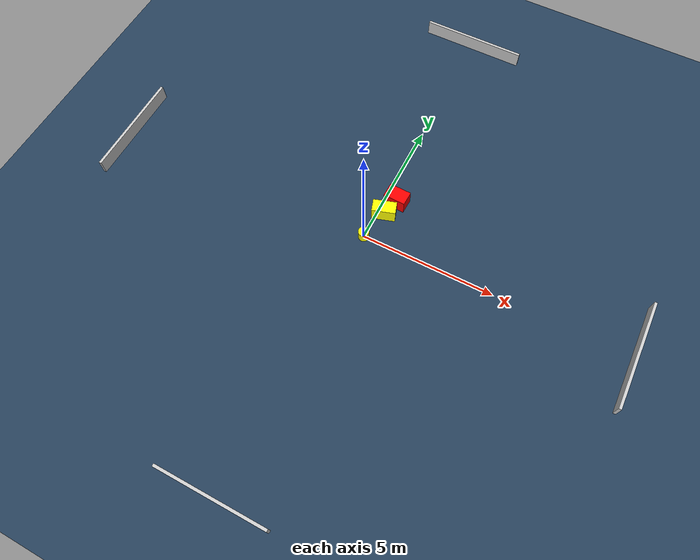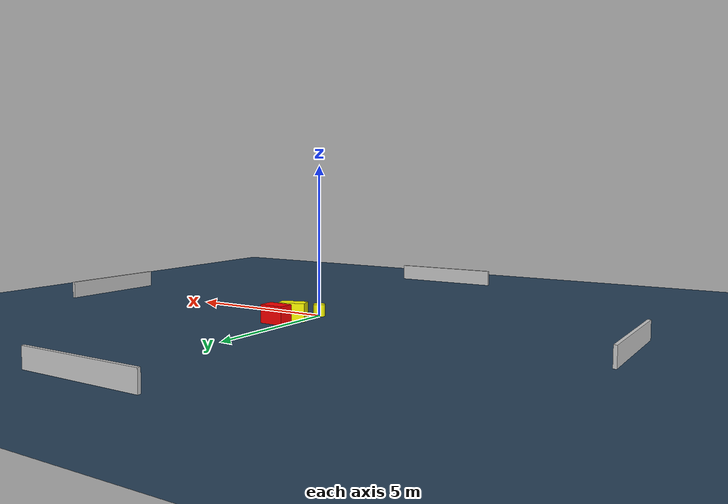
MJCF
<?xml version="1.0" ?>
<mujoco model="generated_environment">
  <option timestep="0.01" integrator="RK4" cone="elliptic"/>
  <default>
    <geom density="1"/>
  </default>
  <asset>
    <texture builtin="gradient" height="3072" name="skybox" rgb1="0.3 0.5 0.7" rgb2="0 0 0" type="skybox" width="512"/>
    <texture builtin="checker" height="300" name="groundplane" rgb1="0.2 0.3 0.4" rgb2="0.1 0.2 0.3" type="2d" width="300"/>
    <material name="groundplane" reflectance="0.2" texrepeat="5 5" texture="groundplane"/>
  </asset>
  <worldbody>
    <light dir="0 0 -1" directional="true" pos="0 0 1.5"/>
    <geom condim="3" friction="0.5 0.005 0.001" material="groundplane" name="floor" pos="0 0 0" size="0 0 0.05" type="plane"/>
    <body name="walls">
      <geom name="wall_1" condim="4" pos="-10.0 0.0 0.3" rgba="0.800000011920929 0.800000011920929 0.800000011920929 1.0" size="0.05 2.0 0.3" type="box"/>
      <geom name="wall_2" condim="4" pos="10.0 0.0 0.3" rgba="0.800000011920929 0.800000011920929 0.800000011920929 1.0" size="0.05 2.0 0.3" type="box"/>
      <geom name="wall_3" condim="4" pos="0.0 -10.0 0.3" rgba="0.800000011920929 0.800000011920929 0.800000011920929 1.0" size="2.0 0.05 0.3" type="box"/>
      <geom name="wall_4" condim="4" pos="0.0 10.0 0.3" rgba="0.800000011920929 0.800000011920929 0.800000011920929 1.0" size="2.0 0.05 0.3" type="box"/>
    </body>
    <body name="robot">
      <joint name="joint_x" type="slide" pos="0 0 0" axis="1 0 0"/>
      <joint name="joint_y" type="slide" pos="0 0 0" axis="0 1 0"/>
      <geom name="robot" type="cylinder" pos="0.0 0.0 0.2" size="0.2 0.2 0.0" mass="5.0" friction="1.0 0.005 0.0001" condim="4" rgba="1.0 1.0 0.0 1.0"/>
    </body>
    <body name="obstacle_1_movable">
      <geom name="obstacle_1_movable" condim="4" pos="0.24218584805418064 1.1543296967715422 0.3" euler="0 0 287.91835583294545" friction="0.0 0.005 0.001" rgba="1.0 1.0 0.0 1.0" size="0.23497786937661877 0.4366734073684624 0.3" type="box" mass="0.1"/>
      <joint type="free"/>
    </body>
    <body name="obstacle_2_static">
      <geom name="obstacle_2_static" condim="4" pos="0.43597218137523286 1.8290339185479612 0.3" euler="0 0 88.04378425652138" friction="0.0 0.005 0.001" rgba="1.0 0.0 0.0 1.0" size="0.26702728925113484 0.40991569507814063 0.3" type="box"/>
    </body>
  </worldbody>
  <actuator>
    <motor name="actuator_x" joint="joint_x" gear="1" ctrlrange="-1 1"/>
    <motor name="actuator_y" joint="joint_y" gear="1" ctrlrange="-1 1"/>
  </actuator>
</mujoco>
